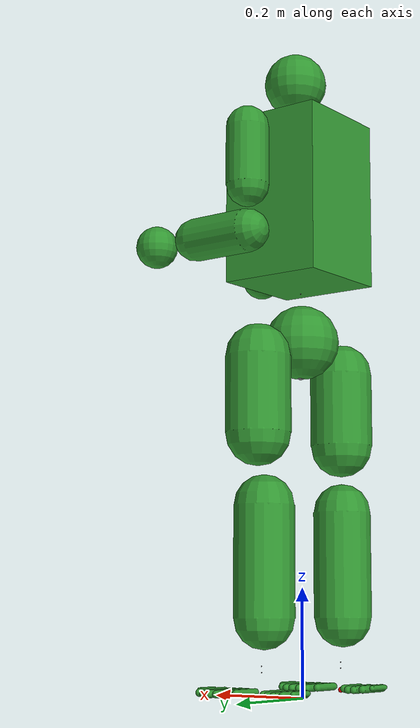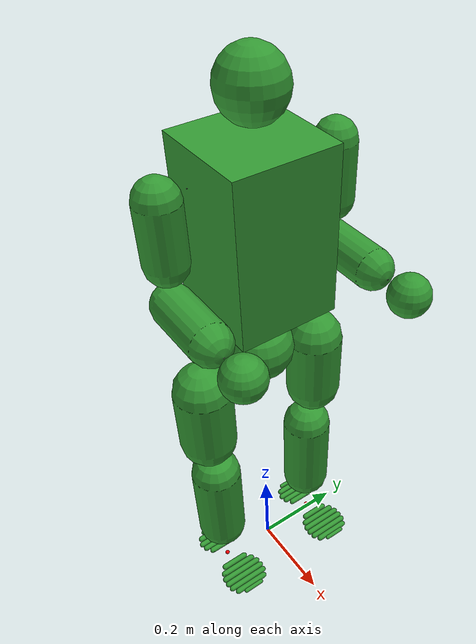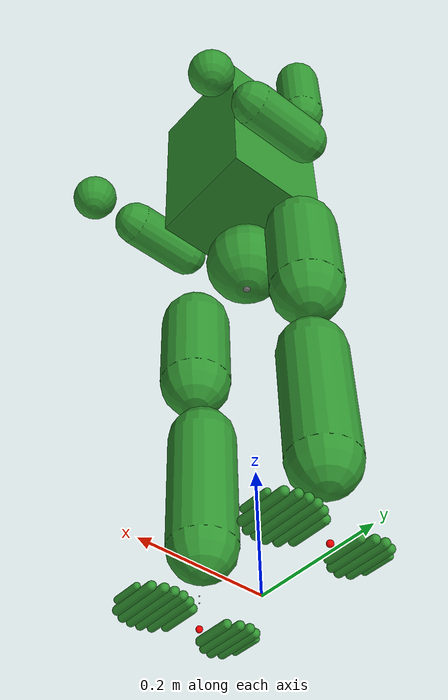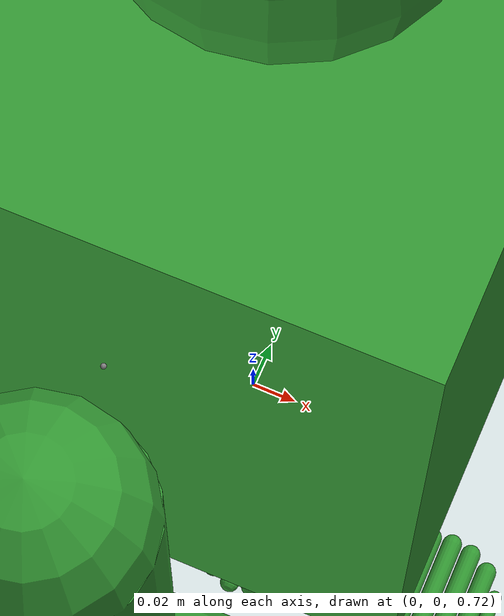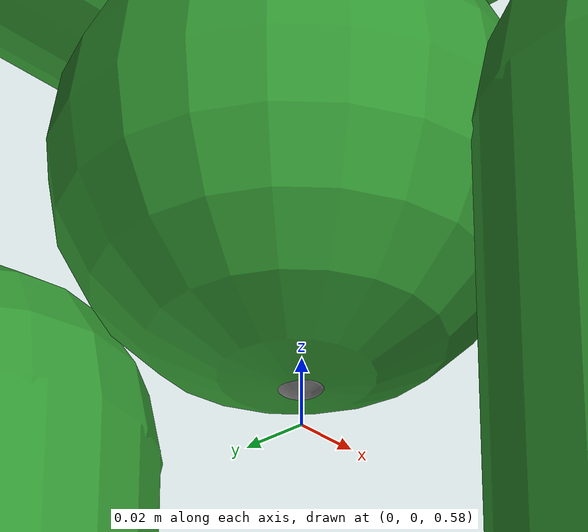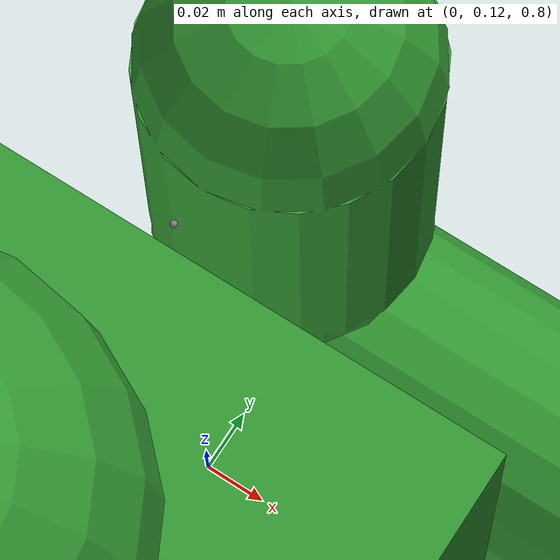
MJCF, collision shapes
<mujoco model="astro">
  <compiler angle="radian" meshdir="meshes" autolimits="true"/>

  <size njmax="500" nconmax="100" />
  <default>
    <joint actuatorfrclimited="true"  armature="0.01" frictionloss="0.1" damping="0.001"/>

    <default class="visual">
      <geom type="mesh" contype="0" conaffinity="0" group="1" density="0" rgba="0.753 0.753 0.753 1"/>

    </default>

    <default class="collision">
        <geom group="3" rgba=".2 .6 .2 .3" contype="1" conaffinity="1"/>
    </default>

  </default>

  <asset>
    <mesh name="pelvis" file="pelvis.stl"/>
    <mesh name="imu_1_link" file="imu_1_link.stl"/>
    <mesh name="waist_yaw_link" file="waist_yaw_link.stl"/>
    <mesh name="waist_pitch_link" file="waist_pitch_link.stl"/>
    <mesh name="waist_roll_link" file="waist_roll_link.stl"/>
    <mesh name="imu_2_link" file="imu_2_link.stl"/>
    <mesh name="torso_link" file="torso_link.stl"/>
    <mesh name="lidar_link" file="lidar_link.stl"/>
    <mesh name="head_link" file="head_link.stl"/>
    <mesh name="left_hip_pitch_link" file="left_hip_pitch_link.stl"/>
    <mesh name="left_hip_roll_link" file="left_hip_roll_link.stl"/>
    <mesh name="left_hip_yaw_link" file="left_hip_yaw_link.stl"/>
    <mesh name="left_knee_link" file="left_knee_link.stl"/>
    <mesh name="left_ankle_pitch_link" file="left_ankle_pitch_link.stl"/>
    <mesh name="left_ankle_roll_link" file="left_ankle_roll_link.stl"/>
    <mesh name="right_hip_pitch_link" file="right_hip_pitch_link.stl"/>
    <mesh name="right_hip_roll_link" file="right_hip_roll_link.stl"/>
    <mesh name="right_hip_yaw_link" file="right_hip_yaw_link.stl"/>
    <mesh name="right_knee_link" file="right_knee_link.stl"/>
    <mesh name="right_ankle_pitch_link" file="right_ankle_pitch_link.stl"/>
    <mesh name="right_ankle_roll_link" file="right_ankle_roll_link.stl"/>
    <mesh name="left_shoulder_pitch_link" file="left_shoulder_pitch_link.stl"/>
    <mesh name="left_shoulder_roll_link" file="left_shoulder_roll_link.stl"/>
    <mesh name="left_shoulder_yaw_link" file="left_shoulder_yaw_link.stl"/>
    <mesh name="left_elbow_link" file="left_elbow_link.stl"/>
    <mesh name="left_wrist_roll_link" file="left_wrist_roll_link.stl"/>
    <mesh name="left_wrist_pitch_link" file="left_wrist_pitch_link.stl"/>
    <mesh name="left_wrist_yaw_link" file="left_wrist_yaw_link.stl"/>
    <mesh name="right_shoulder_pitch_link" file="right_shoulder_pitch_link.stl"/>
    <mesh name="right_shoulder_roll_link" file="right_shoulder_roll_link.stl"/>
    <mesh name="right_shoulder_yaw_link" file="right_shoulder_yaw_link.stl"/>
    <mesh name="right_elbow_link" file="right_elbow_link.stl"/>
    <mesh name="right_wrist_roll_link" file="right_wrist_roll_link.stl"/>
    <mesh name="right_wrist_pitch_link" file="right_wrist_pitch_link.stl"/>
    <mesh name="right_wrist_yaw_link" file="right_wrist_yaw_link.stl"/>
  </asset>

  <worldbody>
    <body name="pelvis" pos="0 0 0.75">
      <inertial pos="-0.000225395 0.000123612 -0.0770778" quat="0.999993 -0.00283949 0.00248691 0.000332024" mass="4.66986" diaginertia="0.0170111 0.0136742 0.0114838"/>
      <joint name="floating_base_joint" type="free" limited="false" actuatorfrclimited="false"/>
      <geom class="visual" mesh="pelvis"/>
      <geom name="pelvis_collision" class="collision" type="sphere" size="0.07" pos="-0.002 0.0 -0.09"/>
      <geom pos="0 0.0005 -0.151" quat="1 0 0 0" class="visual" mesh="imu_1_link"/>
      <site name="imu_in_pelvis" size="0.01" pos="0.0 0.0005 -0.15125"/>

       <!-- Left Leg -->
      <body name="left_hip_pitch_link" pos="0 0.067 -0.105">
        <inertial pos="0.00461131 0.0590805 -0.0100091" quat="0.987558 0.156491 0.0109538 -0.0109098" mass="1.73092" diaginertia="0.00279375 0.00204603 0.00201376"/>
        <joint name="left_hip_pitch_joint" pos="0 0 0" axis="0 1 0" range="-2.62 2.62" actuatorfrcrange="-130 130" armature="0.08143145775"/>
        <site name="left_hip_pitch_joint_site" size="0.001" pos="0 0 0"/>
        <geom class="visual" mesh="left_hip_pitch_link"/>
        <body name="left_hip_roll_link" pos="0 0.06 -0.01">
          <inertial pos="0.00044632 0.00127283 -0.0900765" quat="0.713274 0.0332709 0.0604513 0.69748" mass="1.95101" diaginertia="0.00519673 0.00480243 0.00336619"/>
          <joint name="left_hip_roll_joint" pos="0 0 0" axis="1 0 0" range="-0.26 2.27" actuatorfrcrange="-130 130" armature="0.08143145775"/>
          <site name="left_hip_roll_joint_site" size="0.001" pos="0 0 0"/>
          <geom class="visual" mesh="left_hip_roll_link"/>
          <geom name="left_hip_roll_collision" class="collision" type="capsule" size="0.06" fromto="0 0.01 -0.16 0 0.01 -0.02"/>
          <body name="left_hip_yaw_link" pos="0 0 -0.135">
            <inertial pos="-0.00973565 0.0037263 -0.123883" quat="0.712474 0.0616954 0.0481252 0.697323" mass="2.38574" diaginertia="0.00976112 0.00912025 0.00277787"/>
            <joint name="left_hip_yaw_joint" pos="0 0 0" axis="0 0 1" range="-1.57 3.67" actuatorfrcrange="-130 130" armature="0.08143145775"/>
            <site name="left_hip_yaw_joint_site" size="0.001" pos="0 0 0"/>
            <geom class="visual" mesh="left_hip_yaw_link"/>
            <body name="left_knee_link" pos="-0.016 0 -0.155">
              <inertial pos="0.014612 0.00074396 -0.120025" quat="0.998998 -0.0100767 -0.00396365 0.0434198" mass="2.2496" diaginertia="0.0126163 0.0122678 0.00250083"/>
              <joint name="left_knee_joint" pos="0 0 0" axis="0 1 0" range="-0.09 2.44" actuatorfrcrange="-130 130" armature="0.08143145775"/>
              <site name="left_knee_joint_site" size="0.001" pos="0 0 0"/>
              <geom class="visual" mesh="left_knee_link"/>
              <geom name="left_knee_collision" class="collision" type="capsule" size="0.055" fromto="0.01 0 -0.2 0.01 0 -0.0"/>
              <body name="left_ankle_pitch_link" pos="0.016 0 -0.283">
                <inertial pos="2.522e-05 0.00035999 -0.0046849" quat="0.610599 0.791894 -0.00554276 0.00655421" mass="0.130722" diaginertia="2.10212e-05 1.69866e-05 1.60922e-05"/>
                <joint name="left_ankle_pitch_joint" pos="0 0 0" axis="0 1 0" range="-0.79 0.52" actuatorfrcrange="-60 60"  armature="0.008810606409825"/>
                <site name="left_ankle_pitch_joint_site" size="0.001" pos="0 0 0"/>
                <geom class="visual" mesh="left_ankle_pitch_link"/>
                <body name="left_ankle_roll_link" pos="0 0 -0.011">
                  <site name="left_foot" rgba="1 0 0 1" pos="0.0 0.0 -0.04"/>
                  <inertial pos="0.0156922 -9.53e-05 -0.0189496" quat="0.00122859 0.71678 0.00317776 0.697291" mass="0.805177" diaginertia="0.0030718 0.00285333 0.000666407"/>
                  <joint name="left_ankle_roll_joint" pos="0 0 0" axis="1 0 0" range="-0.35 0.35" actuatorfrcrange="-45 45" armature="0.008810606409825"/>
                  <site name="left_ankle_roll_joint_site" size="0.001" pos="0 0 0"/>
                  <geom class="visual" mesh="left_ankle_roll_link"/>
                  <!-- Forefoot collision -->
                  <geom name="left_foot1_collision" type="capsule" size="0.005" class="collision"
                        fromto="0.122 -0.021 -0.033   0.122 0.021 -0.033"/>
                  <geom name="left_foot2_collision" type="capsule" size="0.007" class="collision"
                        fromto="0.11 -0.037 -0.036   0.11 0.037 -0.036"/>
                  <geom name="left_foot3_collision" type="capsule" size="0.007" class="collision"
                        fromto="0.095 -0.045 -0.037   0.095 0.045 -0.037"/>
                  <geom name="left_foot4_collision" type="capsule" size="0.007" class="collision"
                        fromto="0.080 -0.047 -0.037   0.080 0.047 -0.037"/>
                  <geom name="left_foot5_collision" type="capsule" size="0.007" class="collision"
                        fromto="0.065 -0.046 -0.037   0.065 0.046 -0.037"/>
                  <geom name="left_foot6_collision" type="capsule" size="0.007" class="collision"
                        fromto="0.050 -0.040 -0.037   0.050 0.040 -0.037"/>
                  <geom name="left_foot7_collision" type="capsule" size="0.007" class="collision"
                        fromto="0.035 -0.028 -0.036   0.035 0.028 -0.036"/>

                  <!-- Rearfoot collision -->
                  <geom name="left_foot8_collision" type="capsule" size="0.007" class="collision"
                        fromto="-0.025 -0.028 -0.036   -0.025 0.028 -0.036"/>
                  <geom name="left_foot9_collision" type="capsule" size="0.007" class="collision"
                        fromto="-0.040 -0.038 -0.037   -0.040 0.038 -0.037"/>
                  <geom name="left_foot10_collision" type="capsule" size="0.007" class="collision"
                        fromto="-0.055 -0.041 -0.037   -0.055 0.041 -0.037"/>
                  <geom name="left_foot11_collision" type="capsule" size="0.007" class="collision"
                        fromto="-0.070 -0.035 -0.036   -0.070  0.035 -0.036"/>
                  <geom name="left_foot12_collision" type="capsule" size="0.005" class="collision"
                        fromto="-0.083 -0.022 -0.034   -0.083 0.022 -0.034"/>
                </body>
              </body>
            </body>
          </body>
        </body>
      </body>

      <!-- Right Leg -->
      <body name="right_hip_pitch_link" pos="0 -0.067 -0.105">
        <inertial pos="-0.00459361 -0.0588614 -0.00998201" quat="0.948876 -0.315246 -0.00863184 -0.0134061" mass="1.73769" diaginertia="0.00281784 0.00205641 0.00203111"/>
        <joint name="right_hip_pitch_joint" pos="0 0 0" axis="0 1 0" range="-2.62 2.62" actuatorfrcrange="-130 130" armature="0.08143145775"/>
        <site name="right_hip_pitch_joint_site" size="0.001" pos="0 0 0"/>
        <geom class="visual" mesh="right_hip_pitch_link"/>
        <body name="right_hip_roll_link" pos="0 -0.06 -0.01">
          <inertial pos="-0.00133215 -0.00127156 -0.0900644" quat="0.712995 -0.0140709 -0.0409521 0.699831" mass="1.95145" diaginertia="0.00519582 0.00478707 0.00338076"/>
          <joint name="right_hip_roll_joint" pos="0 0 0" axis="1 0 0" range="-2.27 0.26" actuatorfrcrange="-130 130" armature="0.08143145775"/>
          <site name="right_hip_roll_joint_site" size="0.001" pos="0 0 0"/>
          <geom class="visual" mesh="right_hip_roll_link"/>
          <geom name="right_hip_roll_collision" class="collision" type="capsule" size="0.06" fromto="0 -0.01 -0.16 0 -0.01 -0.02"/>
          <body name="right_hip_yaw_link" pos="0 0 -0.135">
            <inertial pos="-0.00973603 0.00302552 -0.123883" quat="0.706784 0.0702224 0.039444 0.702829" mass="2.38573" diaginertia="0.00977133 0.00913181 0.00277869"/>
            <joint name="right_hip_yaw_joint" pos="0 0 0" axis="0 0 1" range="-3.67 1.57" actuatorfrcrange="-130 130" armature="0.08143145775"/>
            <site name="right_hip_yaw_joint_site" size="0.001" pos="0 0 0"/>
            <geom class="visual" mesh="right_hip_yaw_link"/>
            <body name="right_knee_link" pos="-0.016 0 -0.155">
              <inertial pos="0.0146439 0.0007458 -0.119993" quat="0.998972 -0.0101252 -0.0038353 0.0440301" mass="2.24402" diaginertia="0.0125519 0.012207 0.00249337"/>
              <joint name="right_knee_joint" pos="0 0 0" axis="0 1 0" range="-0.09 2.44" actuatorfrcrange="-130 130" armature="0.08143145775"/>
              <site name="right_knee_joint_site" size="0.001" pos="0 0 0"/>
              <geom class="visual" mesh="right_knee_link"/>
              <geom name="right_knee_collision" class="collision" type="capsule" size="0.055" fromto="0.01 0 -0.2 0.01 0 -0.0"/>
              <body name="right_ankle_pitch_link" pos="0.016 0 -0.283">
                <inertial pos="2.522e-05 0.00035999 -0.0046849" quat="0.610599 0.791894 -0.00554276 0.00655421" mass="0.130722" diaginertia="2.10212e-05 1.69866e-05 1.60922e-05"/>
                <joint name="right_ankle_pitch_joint" pos="0 0 0" axis="0 1 0" range="-0.79 0.52" actuatorfrcrange="-60 60" armature="0.008810606409825"/>
                <site name="right_ankle_pitch_joint_site" size="0.001" pos="0 0 0"/>
                <geom class="visual" mesh="right_ankle_pitch_link"/>
                <body name="right_ankle_roll_link" pos="0 0 -0.011">
                  <site name="right_foot" rgba="1 0 0 1" pos="0.0 0.0 -0.04"/>
                  <inertial pos="0.0156922 -9.53e-05 -0.0189496" quat="0.00122859 0.71678 0.00317776 0.697291" mass="0.805177" diaginertia="0.0030718 0.00285333 0.000666407"/>
                  <joint name="right_ankle_roll_joint" pos="0 0 0" axis="1 0 0" range="-0.35 0.35" actuatorfrcrange="-45 45" armature="0.008810606409825"/>
                  <site name="right_ankle_roll_joint_site" size="0.001" pos="0 0 0"/>
                  <geom class="visual" mesh="right_ankle_roll_link"/>

                  <!-- Forefoot collision -->
                  <geom name="right_foot1_collision" type="capsule" size="0.005" class="collision"
                        fromto="0.122 -0.021 -0.033   0.122 0.021 -0.033"/>
                  <geom name="right_foot2_collision" type="capsule" size="0.007" class="collision"
                        fromto="0.11 -0.037 -0.036   0.11 0.037 -0.036"/>
                  <geom name="right_foot3_collision" type="capsule" size="0.007" class="collision"
                        fromto="0.095 -0.045 -0.037   0.095 0.045 -0.037"/>
                  <geom name="right_foot4_collision" type="capsule" size="0.007" class="collision"
                        fromto="0.080 -0.047 -0.037   0.080 0.047 -0.037"/>
                  <geom name="right_foot5_collision" type="capsule" size="0.007" class="collision"
                        fromto="0.065 -0.046 -0.037   0.065 0.046 -0.037"/>
                  <geom name="right_foot6_collision" type="capsule" size="0.007" class="collision"
                        fromto="0.050 -0.040 -0.037   0.050 0.040 -0.037"/>
                  <geom name="right_foot7_collision" type="capsule" size="0.007" class="collision"
                        fromto="0.035 -0.028 -0.036   0.035 0.028 -0.036"/>

                  <!-- Rearfoot collision -->
                  <geom name="right_foot8_collision" type="capsule" size="0.007" class="collision"
                        fromto="-0.025 -0.028 -0.036   -0.025 0.028 -0.036"/>
                  <geom name="right_foot9_collision" type="capsule" size="0.007" class="collision"
                        fromto="-0.040 -0.038 -0.037   -0.040 0.038 -0.037"/>
                  <geom name="right_foot10_collision" type="capsule" size="0.007" class="collision"
                        fromto="-0.055 -0.041 -0.037   -0.055 0.041 -0.037"/>
                  <geom name="right_foot11_collision" type="capsule" size="0.007" class="collision"
                        fromto="-0.070 -0.035 -0.036   -0.070  0.035 -0.036"/>
                  <geom name="right_foot12_collision" type="capsule" size="0.005" class="collision"
                        fromto="-0.083 -0.022 -0.034   -0.083 0.022 -0.034"/>
                </body>
              </body>
            </body>
          </body>
        </body>
      </body>

      <body name="waist_yaw_link" pos="0 0 0.005">
        <inertial pos="-0.0087049 5.2716e-05 0.014173" quat="0.00014175 0.709438 0.000886921 0.704767" mass="0.165516" diaginertia="0.000189885 0.00015596 7.93851e-05"/>
        <joint name="waist_yaw_joint" pos="0 0 0" axis="0 0 1" range="-1.57 3.67" actuatorfrcrange="-130 130" armature="0.08143145775"/>
        <site name="waist_yaw_joint_site" size="0.001" pos="0 0 0"/>
        <geom class="visual" mesh="waist_yaw_link"/>
        <body name="waist_pitch_link" pos="0 0 0.031992">
          <inertial pos="0 0 0" quat="0 0.707107 0 0.707107" mass="0.19534" diaginertia="0.00010164 6.442e-05 4.428e-05"/>
          <joint name="waist_pitch_joint" pos="0 0 0" axis="0 1 0" range="-0.37 0.44" actuatorfrcrange="-60 60" armature="0.008810606409825"/>
          <site name="waist_pitch_joint_site" size="0.001" pos="0 0 0"/>
          <geom class="visual" mesh="waist_pitch_link"/>
          <body name="torso_link">
            <inertial pos="-0.00622302 0.000501357 0.162606" quat="0.999822 0.00321008 -0.00817218 0.0167035" mass="9.22565" diaginertia="0.09919 0.0812099 0.048019"/>
            <joint name="waist_roll_joint" pos="0 0 0" axis="1 0 0" range="-0.28 0.28" actuatorfrcrange="-50 50" armature="0.008810606409825"/>
            <site name="waist_roll_joint_site" size="0.001" pos="0 0 0"/>
            <geom class="visual" mesh="waist_roll_link"/>
            <geom pos="0 0.000500001 0.0734582" quat="1 0 0 0" class="visual" mesh="imu_2_link"/>
            <site name="imu_in_torso" size="0.01" pos="0.0 0.000500001 0.0734582"/>
            <geom pos="0 0 0.257008" class="visual" mesh="torso_link"/>
            <geom name="torso_collision" class="collision" type="box" size="0.1 0.1 0.16" pos="0.003 0 0.147008"/>
            <geom pos="0.0596984 0.01529 0.267888" quat="1 0 0 0" class="visual" mesh="lidar_link"/>
            <!-- Head -->
            <body name="head_link" pos="0.01 0 0.292008">
              <inertial pos="0.00577985 -0.0001404 0.0857768" quat="0.733025 0.679971 -0.0175169 0.00274608" mass="0.853172" diaginertia="0.00181761 0.00162284 0.00157134"/>
              <joint name="head_yaw_joint" pos="0 0 0" axis="0 0 1" range="-0.61 0.61" actuatorfrcrange="-10 10" armature="0.002387232"/>
              <site name="head_yaw_joint_site" size="0.001" pos="0 0 0"/>
              <geom class="visual" mesh="head_link"/>
              <geom name="head_collision" class="collision" type="sphere" size="0.06" pos="0 0 0.096"/>
            </body>

            <!-- Left Arm -->
            <body name="left_shoulder_pitch_link" pos="0 0.118 0.257008">
              <inertial pos="0.00459712 0.049863 -8.18e-05" quat="0.51404 0.398707 -0.592178 0.475522" mass="0.70438" diaginertia="0.000513564 0.00050551 0.000447286"/>
              <joint name="left_shoulder_pitch_joint" pos="0 0 0" axis="0 1 0" range="-2.97 2.97" actuatorfrcrange="-30 30" armature="0.008810606409825"/>
              <site name="left_shoulder_pitch_joint_site" size="0.001" pos="0 0 0"/>
              <geom class="visual" mesh="left_shoulder_pitch_link"/>
              <body name="left_shoulder_roll_link" pos="0 0.052 0">
                <inertial pos="0.00096358 9.089e-05 -0.0702625" quat="0.707615 0.0305478 0.0319506 0.705214" mass="0.78842" diaginertia="0.00148412 0.00131906 0.00066796"/>
                <joint name="left_shoulder_roll_joint" pos="0 0 0" axis="1 0 0" range="-0.52 2.62" actuatorfrcrange="-30 30" armature="0.008810606409825"/>
                <site name="left_shoulder_roll_joint_site" size="0.001" pos="0 0 0"/>
                <geom class="visual" mesh="left_shoulder_roll_link"/>
                <body name="left_shoulder_yaw_link" pos="0 0 -0.114">
                  <inertial pos="-0.00012457 0.0033326 -0.0724009" quat="0.99843 0.0368722 -0.0035283 -0.0420143" mass="0.828106" diaginertia="0.00111584 0.00109824 0.000528769"/>
                  <joint name="left_shoulder_yaw_joint" pos="0 0 0" axis="0 0 1" range="-1.92 1.92" actuatorfrcrange="-30 30" armature="0.008810606409825"/>
                  <site name="left_shoulder_yaw_joint_site" size="0.001" pos="0 0 0"/>
                  <geom class="visual" mesh="left_shoulder_yaw_link"/>
                  <geom name="left_shoulder_yaw_collision" class="collision" type="capsule" size="0.040" fromto="0 0 -0.0 0 0 0.11"/>
                  <body name="left_elbow_link" pos="0 0 -0.086">
                    <inertial pos="0.0701015 0.00097144 -9.426e-05" quat="0.0309242 0.706301 -0.0324763 0.70649" mass="0.786039" diaginertia="0.00148308 0.00131807 0.000667258"/>
                    <joint name="left_elbow_joint" pos="0 0 0" axis="0 1 0" range="-0.52 1.66" actuatorfrcrange="-30 30" armature="0.008810606409825"/>
                    <site name="left_elbow_joint_site" size="0.001" pos="0 0 0"/>
                    <geom class="visual" mesh="left_elbow_link"/>
                    <geom name="left_elbow_collision" class="collision" type="capsule" size="0.040" fromto="0 0 -0.0 0.12 0 0"/>
                    <body name="left_wrist_roll_link" pos="0.114 0 0">
                      <inertial pos="0.0246703 -0.00012277 -7.18e-06" quat="0.489108 0.510294 -0.489613 0.510542" mass="0.156708" diaginertia="0.00020062 0.000173151 0.000121569"/>
                      <joint name="left_wrist_roll_joint" pos="0 0 0" axis="1 0 0" range="-1.92 1.92" actuatorfrcrange="-30 30" armature="0.008810606409825"/>
                      <site name="left_wrist_roll_joint_site" size="0.001" pos="0 0 0"/>
                      <geom class="visual" mesh="left_wrist_roll_link"/>
                      <body name="left_wrist_pitch_link" pos="0.0469966 0 0">
                        <inertial pos="0.0224653 0.00313308 0.00312137" quat="0.373376 0.611117 0.246298 0.653042" mass="0.71406" diaginertia="0.000702376 0.000699907 0.000347407"/>
                        <joint name="left_wrist_pitch_joint" pos="0 0 0" axis="0 1 0" range="-1.31 1.31" actuatorfrcrange="-10 10" armature="0.002387232"/>
                        <site name="left_wrist_pitch_joint_site" size="0.001" pos="0 0 0"/>
                        <geom class="visual" mesh="left_wrist_pitch_link"/>
                        <body name="left_wrist_yaw_link" pos="0.0449984 0 0">
                          <inertial pos="0.0198567 0 0.00024671" quat="0.707041 -0.00966256 -0.00966256 0.707041" mass="0.143703" diaginertia="0.00019265 0.000160389 0.000108041"/>
                          <joint name="left_wrist_yaw_joint" pos="0 0 0" axis="0 0 1" range="-1.31 1.31" actuatorfrcrange="-10 10" armature="0.002387232"/>
                          <site name="left_wrist_yaw_joint_site" size="0.001" pos="0 0 0"/>
                          <geom class="visual" mesh="left_wrist_yaw_link"/>
                          <geom name="left_wrist_yaw_collision" class="collision" type="sphere" size="0.04" pos="0.01 0 0"/>
                        </body>
                      </body>
                    </body>
                  </body>
                </body>
              </body>
            </body>

            <!-- Right Arm -->
            <body name="right_shoulder_pitch_link" pos="0 -0.118 0.257008">
              <inertial pos="0.00459712 -0.049863 8.18e-05" quat="0.475522 0.592178 -0.398707 0.51404" mass="0.70438" diaginertia="0.000513564 0.00050551 0.000447286"/>
              <joint name="right_shoulder_pitch_joint" pos="0 0 0" axis="0 1 0" range="-2.97 2.97" actuatorfrcrange="-30 30" armature="0.008810606409825"/>
              <site name="right_shoulder_pitch_joint_site" size="0.001" pos="0 0 0"/>
              <geom class="visual" mesh="right_shoulder_pitch_link"/>
              <body name="right_shoulder_roll_link" pos="0 -0.052 0">
                <inertial pos="0.00096676 7.476e-05 -0.0702625" quat="0.708159 0.0315926 0.0309014 0.704668" mass="0.78842" diaginertia="0.00148413 0.00131905 0.000667964"/>
                <joint name="right_shoulder_roll_joint" pos="0 0 0" axis="1 0 0" range="-2.62 0.52" actuatorfrcrange="-30 30" armature="0.008810606409825"/>
                <site name="right_shoulder_roll_joint_site" size="0.001" pos="0 0 0"/>
                <geom class="visual" mesh="right_shoulder_roll_link"/>
                <body name="right_shoulder_yaw_link" pos="0 0 -0.114">
                  <inertial pos="-0.00012457 0.0033326 -0.0724009" quat="0.99843 0.0368722 -0.0035283 -0.0420143" mass="0.828106" diaginertia="0.00111584 0.00109824 0.000528769"/>
                  <joint name="right_shoulder_yaw_joint" pos="0 0 0" axis="0 0 1" range="-1.92 1.92" actuatorfrcrange="-30 30" armature="0.008810606409825"/>
                  <site name="right_shoulder_yaw_joint_site" size="0.001" pos="0 0 0"/>
                  <geom class="visual" mesh="right_shoulder_yaw_link"/>
                  <geom name="right_shoulder_yaw_collision" class="collision" type="capsule" size="0.040" fromto="0 0 -0.0 0 0 0.11"/>
                  <body name="right_elbow_link" pos="0 0 -0.086">
                    <inertial pos="0.0698171 0.00108404 -9.089e-05" quat="0.03491 0.706095 -0.0363816 0.706319" mass="0.789182" diaginertia="0.00150372 0.00133688 0.000671483"/>
                    <joint name="right_elbow_joint" pos="0 0 0" axis="0 1 0" range="-0.52 1.66" actuatorfrcrange="-30 30" armature="0.008810606409825"/>
                    <site name="right_elbow_joint_site" size="0.001" pos="0 0 0"/>
                    <geom class="visual" mesh="right_elbow_link"/>
                    <geom name="right_elbow_collision" class="collision" type="capsule" size="0.040" fromto="0 0 -0.0 0.12 0 0"/>
                    <body name="right_wrist_roll_link" pos="0.114 0 0">
                      <inertial pos="0.0246703 -0.00012277 -7.18e-06" quat="0.489108 0.510294 -0.489613 0.510542" mass="0.156708" diaginertia="0.00020062 0.000173151 0.000121569"/>
                      <joint name="right_wrist_roll_joint" pos="0 0 0" axis="1 0 0" range="-1.92 1.92" actuatorfrcrange="-30 30" armature="0.008810606409825"/>
                      <site name="right_wrist_roll_joint_site" size="0.001" pos="0 0 0"/>
                      <geom class="visual" mesh="right_wrist_roll_link"/>
                      <body name="right_wrist_pitch_link" pos="0.0469966 0 0">
                        <inertial pos="0.0224653 0.00313691 0.00312137" quat="0.373376 0.611117 0.246298 0.653042" mass="0.71406" diaginertia="0.000702376 0.000699907 0.000347407"/>
                        <joint name="right_wrist_pitch_joint" pos="0 0 0" axis="0 1 0" range="-1.31 1.31" actuatorfrcrange="-10 10" armature="0.002387232"/>
                        <site name="right_wrist_pitch_joint_site" size="0.001" pos="0 0 0"/>
                        <geom class="visual" mesh="right_wrist_pitch_link"/>
                        <body name="right_wrist_yaw_link" pos="0.045 0 0">
                          <inertial pos="0.0198551 0 0.00024671" quat="0.707041 -0.00966256 -0.00966256 0.707041" mass="0.143703" diaginertia="0.00019265 0.000160389 0.000108041"/>
                          <joint name="right_wrist_yaw_joint" pos="0 0 0" axis="0 0 1" range="-1.31 1.31" actuatorfrcrange="-10 10" armature="0.002387232"/>
                          <site name="right_wrist_yaw_joint_site" size="0.001" pos="0 0 0"/>
                          <geom class="visual" mesh="right_wrist_yaw_link"/>
                          <geom name="right_wrist_yaw_collision" class="collision" type="sphere" size="0.04" pos="0.01 0 0"/>
                        </body>
                      </body>
                    </body>
                  </body>
                </body>
              </body>
            </body>
          </body>
        </body>
      </body>

    </body>
  </worldbody>

  <sensor>
    <!-- IMU sensors -->
    <framepos name="imu_pos" objtype="site" objname="imu_in_pelvis" />
    <framequat name="imu_quat" objtype="site" objname="imu_in_pelvis" />
    <velocimeter name="imu_lin_vel" site="imu_in_pelvis" />
    <gyro name="imu_ang_vel" site="imu_in_pelvis" noise="5e-4" cutoff="34.9"/>
    <accelerometer name="imu_lin_acc" site="imu_in_pelvis" noise="1e-2" cutoff="157"/>
    <subtreeangmom name="root_angmom" body="pelvis"/>

    <!-- Joint actuator force sensors -->
    <jointactuatorfrc name="waist_yaw_torque" joint="waist_yaw_joint" />
    <jointactuatorfrc name="waist_pitch_torque" joint="waist_pitch_joint" />
    <jointactuatorfrc name="waist_roll_torque" joint="waist_roll_joint" />
    <jointactuatorfrc name="head_yaw_torque" joint="head_yaw_joint" />
    <jointactuatorfrc name="left_shoulder_pitch_torque" joint="left_shoulder_pitch_joint" />
    <jointactuatorfrc name="left_shoulder_roll_torque" joint="left_shoulder_roll_joint" />
    <jointactuatorfrc name="left_shoulder_yaw_torque" joint="left_shoulder_yaw_joint" />
    <jointactuatorfrc name="left_elbow_torque" joint="left_elbow_joint" />
    <jointactuatorfrc name="left_wrist_roll_torque" joint="left_wrist_roll_joint" />
    <jointactuatorfrc name="left_wrist_pitch_torque" joint="left_wrist_pitch_joint" />
    <jointactuatorfrc name="left_wrist_yaw_torque" joint="left_wrist_yaw_joint" />
    <jointactuatorfrc name="right_shoulder_pitch_torque" joint="right_shoulder_pitch_joint" />
    <jointactuatorfrc name="right_shoulder_roll_torque" joint="right_shoulder_roll_joint" />
    <jointactuatorfrc name="right_shoulder_yaw_torque" joint="right_shoulder_yaw_joint" />
    <jointactuatorfrc name="right_elbow_torque" joint="right_elbow_joint" />
    <jointactuatorfrc name="right_wrist_roll_torque" joint="right_wrist_roll_joint" />
    <jointactuatorfrc name="right_wrist_pitch_torque" joint="right_wrist_pitch_joint" />
    <jointactuatorfrc name="right_wrist_yaw_torque" joint="right_wrist_yaw_joint" />
    <jointactuatorfrc name="left_hip_pitch_torque" joint="left_hip_pitch_joint" />
    <jointactuatorfrc name="left_hip_roll_torque" joint="left_hip_roll_joint" />
    <jointactuatorfrc name="left_hip_yaw_torque" joint="left_hip_yaw_joint" />
    <jointactuatorfrc name="left_knee_torque" joint="left_knee_joint" />
    <jointactuatorfrc name="left_ankle_pitch_torque" joint="left_ankle_pitch_joint" />
    <jointactuatorfrc name="left_ankle_roll_torque" joint="left_ankle_roll_joint" />
    <jointactuatorfrc name="right_hip_pitch_torque" joint="right_hip_pitch_joint" />
    <jointactuatorfrc name="right_hip_roll_torque" joint="right_hip_roll_joint" />
    <jointactuatorfrc name="right_hip_yaw_torque" joint="right_hip_yaw_joint" />
    <jointactuatorfrc name="right_knee_torque" joint="right_knee_joint" />
    <jointactuatorfrc name="right_ankle_pitch_torque" joint="right_ankle_pitch_joint" />
    <jointactuatorfrc name="right_ankle_roll_torque" joint="right_ankle_roll_joint" />

    <!-- Force/torque sensors at joint sites -->
    <force name="waist_yaw_force" site="waist_yaw_joint_site"/>
    <torque name="waist_yaw_torque_site" site="waist_yaw_joint_site"/>
    <force name="waist_pitch_force" site="waist_pitch_joint_site"/>
    <torque name="waist_pitch_torque_site" site="waist_pitch_joint_site"/>
    <force name="waist_roll_force" site="waist_roll_joint_site"/>
    <torque name="waist_roll_torque_site" site="waist_roll_joint_site"/>
    <force name="head_yaw_force" site="head_yaw_joint_site"/>
    <torque name="head_yaw_torque_site" site="head_yaw_joint_site"/>
    <force name="left_shoulder_pitch_force" site="left_shoulder_pitch_joint_site"/>
    <torque name="left_shoulder_pitch_torque_site" site="left_shoulder_pitch_joint_site"/>
    <force name="left_shoulder_roll_force" site="left_shoulder_roll_joint_site"/>
    <torque name="left_shoulder_roll_torque_site" site="left_shoulder_roll_joint_site"/>
    <force name="left_shoulder_yaw_force" site="left_shoulder_yaw_joint_site"/>
    <torque name="left_shoulder_yaw_torque_site" site="left_shoulder_yaw_joint_site"/>
    <force name="left_elbow_force" site="left_elbow_joint_site"/>
    <torque name="left_elbow_torque_site" site="left_elbow_joint_site"/>
    <force name="left_wrist_roll_force" site="left_wrist_roll_joint_site"/>
    <torque name="left_wrist_roll_torque_site" site="left_wrist_roll_joint_site"/>
    <force name="left_wrist_pitch_force" site="left_wrist_pitch_joint_site"/>
    <torque name="left_wrist_pitch_torque_site" site="left_wrist_pitch_joint_site"/>
    <force name="left_wrist_yaw_force" site="left_wrist_yaw_joint_site"/>
    <torque name="left_wrist_yaw_torque_site" site="left_wrist_yaw_joint_site"/>
    <force name="right_shoulder_pitch_force" site="right_shoulder_pitch_joint_site"/>
    <torque name="right_shoulder_pitch_torque_site" site="right_shoulder_pitch_joint_site"/>
    <force name="right_shoulder_roll_force" site="right_shoulder_roll_joint_site"/>
    <torque name="right_shoulder_roll_torque_site" site="right_shoulder_roll_joint_site"/>
    <force name="right_shoulder_yaw_force" site="right_shoulder_yaw_joint_site"/>
    <torque name="right_shoulder_yaw_torque_site" site="right_shoulder_yaw_joint_site"/>
    <force name="right_elbow_force" site="right_elbow_joint_site"/>
    <torque name="right_elbow_torque_site" site="right_elbow_joint_site"/>
    <force name="right_wrist_roll_force" site="right_wrist_roll_joint_site"/>
    <torque name="right_wrist_roll_torque_site" site="right_wrist_roll_joint_site"/>
    <force name="right_wrist_pitch_force" site="right_wrist_pitch_joint_site"/>
    <torque name="right_wrist_pitch_torque_site" site="right_wrist_pitch_joint_site"/>
    <force name="right_wrist_yaw_force" site="right_wrist_yaw_joint_site"/>
    <torque name="right_wrist_yaw_torque_site" site="right_wrist_yaw_joint_site"/>
    <force name="left_hip_pitch_force" site="left_hip_pitch_joint_site"/>
    <torque name="left_hip_pitch_torque_site" site="left_hip_pitch_joint_site"/>
    <force name="left_hip_roll_force" site="left_hip_roll_joint_site"/>
    <torque name="left_hip_roll_torque_site" site="left_hip_roll_joint_site"/>
    <force name="left_hip_yaw_force" site="left_hip_yaw_joint_site"/>
    <torque name="left_hip_yaw_torque_site" site="left_hip_yaw_joint_site"/>
    <force name="left_knee_force" site="left_knee_joint_site"/>
    <torque name="left_knee_torque_site" site="left_knee_joint_site"/>
    <force name="left_ankle_pitch_force" site="left_ankle_pitch_joint_site"/>
    <torque name="left_ankle_pitch_torque_site" site="left_ankle_pitch_joint_site"/>
    <force name="left_ankle_roll_force" site="left_ankle_roll_joint_site"/>
    <torque name="left_ankle_roll_torque_site" site="left_ankle_roll_joint_site"/>
    <force name="right_hip_pitch_force" site="right_hip_pitch_joint_site"/>
    <torque name="right_hip_pitch_torque_site" site="right_hip_pitch_joint_site"/>
    <force name="right_hip_roll_force" site="right_hip_roll_joint_site"/>
    <torque name="right_hip_roll_torque_site" site="right_hip_roll_joint_site"/>
    <force name="right_hip_yaw_force" site="right_hip_yaw_joint_site"/>
    <torque name="right_hip_yaw_torque_site" site="right_hip_yaw_joint_site"/>
    <force name="right_knee_force" site="right_knee_joint_site"/>
    <torque name="right_knee_torque_site" site="right_knee_joint_site"/>
    <force name="right_ankle_pitch_force" site="right_ankle_pitch_joint_site"/>
    <torque name="right_ankle_pitch_torque_site" site="right_ankle_pitch_joint_site"/>
    <force name="right_ankle_roll_force" site="right_ankle_roll_joint_site"/>
    <torque name="right_ankle_roll_torque_site" site="right_ankle_roll_joint_site"/>

    <!-- Foot contact force/torque sensors -->
    <force name="left_foot_force" site="left_foot"/>
    <torque name="left_foot_torque" site="left_foot"/>
    <force name="right_foot_force" site="right_foot"/>
    <torque name="right_foot_torque" site="right_foot"/>
  </sensor>

  <!-- setup scene -->
  <statistic center="1 -0.8 1.1" extent=".35"/>

  <visual>
    <headlight diffuse="0.6 0.6 0.6" ambient="0.1 0.1 0.1" specular="0.9 0.9 0.9"/>
    <rgba haze="0.15 0.25 0.35 1"/>
    <global azimuth="140" elevation="-20"/>
  </visual>

  <asset>
    <texture type="skybox" builtin="gradient" rgb1="0.3 0.5 0.7" rgb2="0 0 0" width="512" height="3072"/>
    <texture type="2d" name="groundplane" builtin="checker" mark="edge" rgb1="0.2 0.3 0.4" rgb2="0.1 0.2 0.3"
      markrgb="0.8 0.8 0.8" width="300" height="300"/>
    <material name="groundplane" texture="groundplane" texuniform="true" texrepeat="5 5" reflectance="0.2"/>
  </asset>

  <worldbody>
    <light cutoff="1000" diffuse="1.5 1.5 1.5" dir="-0 0 -1.3" directional="true" exponent="10" pos="0 0 10.3" specular=".1 .1 .1" castshadow="false"/>
  </worldbody>

</mujoco>
